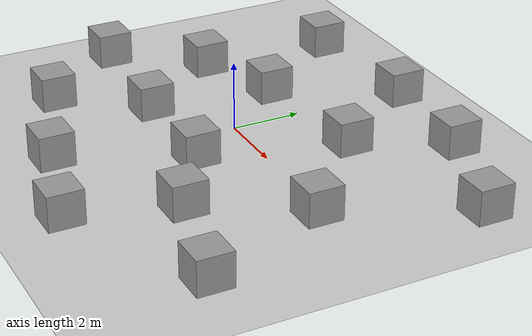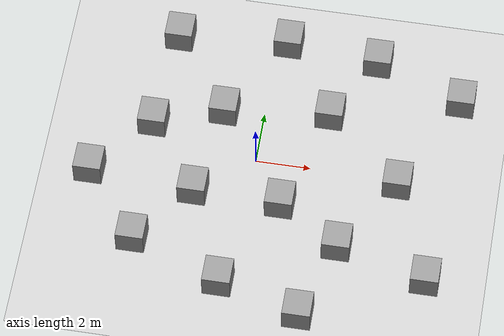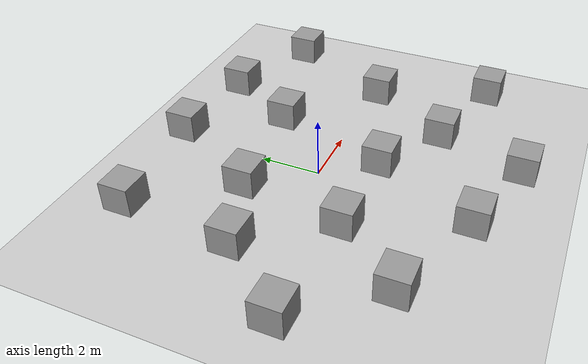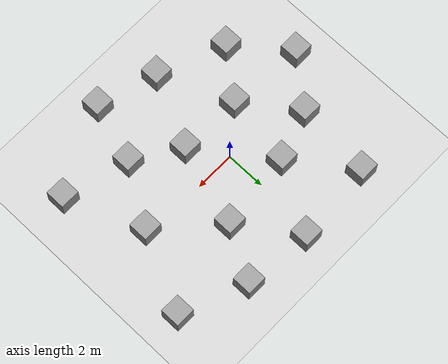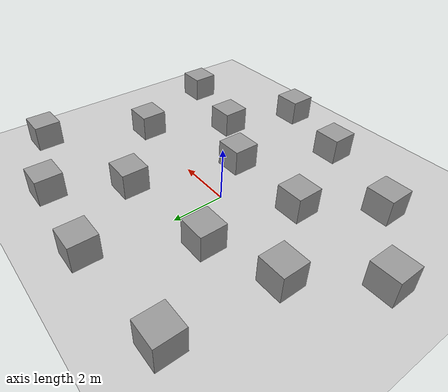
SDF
<sdf version="1.6">
 <world name="default">
  <light name="sun" type="directional">
   <pose>0 0 10 0 -0 0</pose>
   <diffuse>0.8 0.8 0.8 1</diffuse>
   <specular>0.2 0.2 0.2 1</specular>
   <attenuation>
    <range>1000</range>
    <constant>0.9</constant>
    <linear>0.01</linear>
    <quadratic>0.001</quadratic>
   </attenuation>
   <direction>-0.5 0.1 -0.9</direction>
  </light>
  <model name="ground_plane">
   <static>1</static>
   <link name="link">
    <collision name="collision">
     <geometry><plane><normal>0 0 1</normal><size>100 100</size></plane></geometry>
     <surface>
      <contact><collide_bitmask>65535</collide_bitmask></contact>
      <friction><ode><mu>100</mu><mu2>50</mu2></ode></friction>
     </surface>
    </collision>
    <visual name="visual">
     <cast_shadows>0</cast_shadows>
     <geometry><plane><normal>0 0 1</normal><size>100 100</size></plane></geometry>
     <material>
      <script><uri>file://media/materials/scripts/gazebo.material</uri><name>Gazebo/Grey</name></script>
     </material>
    </visual>
   </link>
  </model>
  <gravity>0 0 -9.8</gravity>
  <magnetic_field>6e-06 2.3e-05 -4.2e-05</magnetic_field>
  <atmosphere type="adiabatic"/>
  <physics name="default_physics" default="0" type="ode">
   <max_step_size>0.001</max_step_size>
   <real_time_factor>1</real_time_factor>
   <real_time_update_rate>1000</real_time_update_rate>
  </physics>
  <scene><ambient>0.4 0.4 0.4 1</ambient><background>0.7 0.7 0.7 1</background><shadows>1</shadows></scene>
  <audio><device>default</device></audio>
  <spherical_coordinates>
   <surface_model>EARTH_WGS84</surface_model>
   <latitude_deg>0</latitude_deg>
   <longitude_deg>0</longitude_deg>
   <elevation>0</elevation>
   <heading_deg>0</heading_deg>
  </spherical_coordinates>
  <model name="unit_box">
   <pose>-2.01438 -1.63623 0.5 0 -0 0</pose>
   <link name="link">
    <inertial>
     <mass>1</mass>
     <inertia>
      <ixx>0.166667</ixx>
      <ixy>0</ixy>
      <ixz>0</ixz>
      <iyy>0.166667</iyy>
      <iyz>0</iyz>
      <izz>0.166667</izz>
     </inertia>
    </inertial>
    <collision name="collision"><geometry><box><size>1 1 1</size></box></geometry></collision>
    <visual name="visual">
     <geometry><box><size>1 1 1</size></box></geometry>
     <material>
      <script><name>Gazebo/Grey</name><uri>file://media/materials/scripts/gazebo.material</uri></script>
     </material>
    </visual>
   </link>
  </model>
  <model name="unit_box_clone">
   <pose>1.15268 -1.70914 0.5 0 -0 0</pose>
   <link name="link">
    <inertial>
     <mass>1</mass>
     <inertia>
      <ixx>0.166667</ixx>
      <ixy>0</ixy>
      <ixz>0</ixz>
      <iyy>0.166667</iyy>
      <iyz>0</iyz>
      <izz>0.166667</izz>
     </inertia>
    </inertial>
    <collision name="collision"><geometry><box><size>1 1 1</size></box></geometry></collision>
    <visual name="visual">
     <geometry><box><size>1 1 1</size></box></geometry>
     <material>
      <script><name>Gazebo/Grey</name><uri>file://media/materials/scripts/gazebo.material</uri></script>
     </material>
    </visual>
   </link>
  </model>
  <model name="unit_box_clone_0">
   <pose>-1.46362 1.85699 0.5 0 -0 0</pose>
   <link name="link">
    <inertial>
     <mass>1</mass>
     <inertia>
      <ixx>0.166667</ixx>
      <ixy>0</ixy>
      <ixz>0</ixz>
      <iyy>0.166667</iyy>
      <iyz>0</iyz>
      <izz>0.166667</izz>
     </inertia>
    </inertial>
    <collision name="collision"><geometry><box><size>1 1 1</size></box></geometry></collision>
    <visual name="visual">
     <geometry><box><size>1 1 1</size></box></geometry>
     <material>
      <script><name>Gazebo/Grey</name><uri>file://media/materials/scripts/gazebo.material</uri></script>
     </material>
    </visual>
   </link>
  </model>
  <model name="unit_box_clone_1">
   <pose>2.37048 2.26424 0.5 0 -0 0</pose>
   <link name="link">
    <inertial>
     <mass>1</mass>
     <inertia>
      <ixx>0.166667</ixx>
      <ixy>0</ixy>
      <ixz>0</ixz>
      <iyy>0.166667</iyy>
      <iyz>0</iyz>
      <izz>0.166667</izz>
     </inertia>
    </inertial>
    <collision name="collision"><geometry><box><size>1 1 1</size></box></geometry></collision>
    <visual name="visual">
     <geometry><box><size>1 1 1</size></box></geometry>
     <material>
      <script><name>Gazebo/Grey</name><uri>file://media/materials/scripts/gazebo.material</uri></script>
     </material>
    </visual>
   </link>
  </model>
  <model name="unit_box_clone_2">
   <pose>3.4157 -3.11137 0.5 0 -0 0</pose>
   <link name="link">
    <inertial>
     <mass>1</mass>
     <inertia>
      <ixx>0.166667</ixx>
      <ixy>0</ixy>
      <ixz>0</ixz>
      <iyy>0.166667</iyy>
      <iyz>0</iyz>
      <izz>0.166667</izz>
     </inertia>
    </inertial>
    <collision name="collision"><geometry><box><size>1 1 1</size></box></geometry></collision>
    <visual name="visual">
     <geometry><box><size>1 1 1</size></box></geometry>
     <material>
      <script><name>Gazebo/Grey</name><uri>file://media/materials/scripts/gazebo.material</uri></script>
     </material>
    </visual>
   </link>
  </model>
  <model name="unit_box_clone_3">
   <pose>-3.92918 0.982534 0.5 0 -0 0</pose>
   <link name="link">
    <inertial>
     <mass>1</mass>
     <inertia>
      <ixx>0.166667</ixx>
      <ixy>0</ixy>
      <ixz>0</ixz>
      <iyy>0.166667</iyy>
      <iyz>0</iyz>
      <izz>0.166667</izz>
     </inertia>
    </inertial>
    <collision name="collision"><geometry><box><size>1 1 1</size></box></geometry></collision>
    <visual name="visual">
     <geometry><box><size>1 1 1</size></box></geometry>
     <material>
      <script><name>Gazebo/Grey</name><uri>file://media/materials/scripts/gazebo.material</uri></script>
     </material>
    </visual>
   </link>
  </model>
  <model name="unit_box_clone_4">
   <pose>0.407864 5.11048 0.5 0 -0 0</pose>
   <link name="link">
    <inertial>
     <mass>1</mass>
     <inertia>
      <ixx>0.166667</ixx>
      <ixy>0</ixy>
      <ixz>0</ixz>
      <iyy>0.166667</iyy>
      <iyz>0</iyz>
      <izz>0.166667</izz>
     </inertia>
    </inertial>
    <collision name="collision"><geometry><box><size>1 1 1</size></box></geometry></collision>
    <visual name="visual">
     <geometry><box><size>1 1 1</size></box></geometry>
     <material>
      <script><name>Gazebo/Grey</name><uri>file://media/materials/scripts/gazebo.material</uri></script>
     </material>
    </visual>
   </link>
  </model>
  <model name="unit_box_clone_5">
   <pose>-0.499118 -5.17157 0.5 0 -0 0</pose>
   <link name="link">
    <inertial>
     <mass>1</mass>
     <inertia>
      <ixx>0.166667</ixx>
      <ixy>0</ixy>
      <ixz>0</ixz>
      <iyy>0.166667</iyy>
      <iyz>0</iyz>
      <izz>0.166667</izz>
     </inertia>
    </inertial>
    <collision name="collision"><geometry><box><size>1 1 1</size></box></geometry></collision>
    <visual name="visual">
     <geometry><box><size>1 1 1</size></box></geometry>
     <material>
      <script><name>Gazebo/Grey</name><uri>file://media/materials/scripts/gazebo.material</uri></script>
     </material>
    </visual>
   </link>
  </model>
  <model name="unit_box_clone_6">
   <pose>5.18907 -0.253568 0.5 0 -0 0</pose>
   <link name="link">
    <inertial>
     <mass>1</mass>
     <inertia>
      <ixx>0.166667</ixx>
      <ixy>0</ixy>
      <ixz>0</ixz>
      <iyy>0.166667</iyy>
      <iyz>0</iyz>
      <izz>0.166667</izz>
     </inertia>
    </inertial>
    <collision name="collision"><geometry><box><size>1 1 1</size></box></geometry></collision>
    <visual name="visual">
     <geometry><box><size>1 1 1</size></box></geometry>
     <material>
      <script><name>Gazebo/Grey</name><uri>file://media/materials/scripts/gazebo.material</uri></script>
     </material>
    </visual>
   </link>
  </model>
  <model name="unit_box_clone_7">
   <pose>3.78082 4.78474 0.5 0 -0 0</pose>
   <link name="link">
    <inertial>
     <mass>1</mass>
     <inertia>
      <ixx>0.166667</ixx>
      <ixy>0</ixy>
      <ixz>0</ixz>
      <iyy>0.166667</iyy>
      <iyz>0</iyz>
      <izz>0.166667</izz>
     </inertia>
    </inertial>
    <collision name="collision"><geometry><box><size>1 1 1</size></box></geometry></collision>
    <visual name="visual">
     <geometry><box><size>1 1 1</size></box></geometry>
     <material>
      <script><name>Gazebo/Grey</name><uri>file://media/materials/scripts/gazebo.material</uri></script>
     </material>
    </visual>
   </link>
  </model>
  <model name="unit_box_clone_8">
   <pose>-3.81725 -3.89519 0.5 0 -0 0</pose>
   <link name="link">
    <inertial>
     <mass>1</mass>
     <inertia>
      <ixx>0.166667</ixx>
      <ixy>0</ixy>
      <ixz>0</ixz>
      <iyy>0.166667</iyy>
      <iyz>0</iyz>
      <izz>0.166667</izz>
     </inertia>
    </inertial>
    <collision name="collision"><geometry><box><size>1 1 1</size></box></geometry></collision>
    <visual name="visual">
     <geometry><box><size>1 1 1</size></box></geometry>
     <material>
      <script><name>Gazebo/Grey</name><uri>file://media/materials/scripts/gazebo.material</uri></script>
     </material>
    </visual>
   </link>
  </model>
  <model name="unit_box_clone_9">
   <pose>-3.60823 4.8064 0.5 0 -0 0</pose>
   <link name="link">
    <inertial>
     <mass>1</mass>
     <inertia>
      <ixx>0.166667</ixx>
      <ixy>0</ixy>
      <ixz>0</ixz>
      <iyy>0.166667</iyy>
      <iyz>0</iyz>
      <izz>0.166667</izz>
     </inertia>
    </inertial>
    <collision name="collision"><geometry><box><size>1 1 1</size></box></geometry></collision>
    <visual name="visual">
     <geometry><box><size>1 1 1</size></box></geometry>
     <material>
      <script><name>Gazebo/Grey</name><uri>file://media/materials/scripts/gazebo.material</uri></script>
     </material>
    </visual>
   </link>
  </model>
  <model name="unit_box_clone_10">
   <pose>2.47203 -6.03451 0.5 0 -0 0</pose>
   <link name="link">
    <inertial>
     <mass>1</mass>
     <inertia>
      <ixx>0.166667</ixx>
      <ixy>0</ixy>
      <ixz>0</ixz>
      <iyy>0.166667</iyy>
      <iyz>0</iyz>
      <izz>0.166667</izz>
     </inertia>
    </inertial>
    <collision name="collision"><geometry><box><size>1 1 1</size></box></geometry></collision>
    <visual name="visual">
     <geometry><box><size>1 1 1</size></box></geometry>
     <material>
      <script><name>Gazebo/Grey</name><uri>file://media/materials/scripts/gazebo.material</uri></script>
     </material>
    </visual>
   </link>
  </model>
  <model name="unit_box_clone_11">
   <pose>6.68678 -3.99575 0.5 0 -0 0</pose>
   <link name="link">
    <inertial>
     <mass>1</mass>
     <inertia>
      <ixx>0.166667</ixx>
      <ixy>0</ixy>
      <ixz>0</ixz>
      <iyy>0.166667</iyy>
      <iyz>0</iyz>
      <izz>0.166667</izz>
     </inertia>
    </inertial>
    <collision name="collision"><geometry><box><size>1 1 1</size></box></geometry></collision>
    <visual name="visual">
     <geometry><box><size>1 1 1</size></box></geometry>
     <material>
      <script><name>Gazebo/Grey</name><uri>file://media/materials/scripts/gazebo.material</uri></script>
     </material>
    </visual>
   </link>
  </model>
  <model name="unit_box_clone_12">
   <pose>7.011 3.53431 0.499995 0 1e-05 0</pose>
   <link name="link">
    <inertial>
     <mass>1</mass>
     <inertia>
      <ixx>0.166667</ixx>
      <ixy>0</ixy>
      <ixz>0</ixz>
      <iyy>0.166667</iyy>
      <iyz>0</iyz>
      <izz>0.166667</izz>
     </inertia>
    </inertial>
    <collision name="collision"><geometry><box><size>1 1 1</size></box></geometry></collision>
    <visual name="visual">
     <geometry><box><size>1 1 1</size></box></geometry>
     <material>
      <script><name>Gazebo/Grey</name><uri>file://media/materials/scripts/gazebo.material</uri></script>
     </material>
    </visual>
   </link>
  </model>
  <model name="unit_box_clone_13">
   <pose>-5.84546 -1.3363 0.499995 0 -1e-05 0</pose>
   <link name="link">
    <inertial>
     <mass>1</mass>
     <inertia>
      <ixx>0.166667</ixx>
      <ixy>0</ixy>
      <ixz>0</ixz>
      <iyy>0.166667</iyy>
      <iyz>0</iyz>
      <izz>0.166667</izz>
     </inertia>
    </inertial>
    <collision name="collision"><geometry><box><size>1 1 1</size></box></geometry></collision>
    <visual name="visual">
     <geometry><box><size>1 1 1</size></box></geometry>
     <material>
      <script><name>Gazebo/Grey</name><uri>file://media/materials/scripts/gazebo.material</uri></script>
     </material>
    </visual>
   </link>
  </model>
  <plugin name="gazebo_ros_state" filename="libgazebo_ros_state.so">
   <ros><namespace>/gazebo</namespace></ros>
   <update_rate>50</update_rate>
  </plugin>
 </world>
</sdf>
